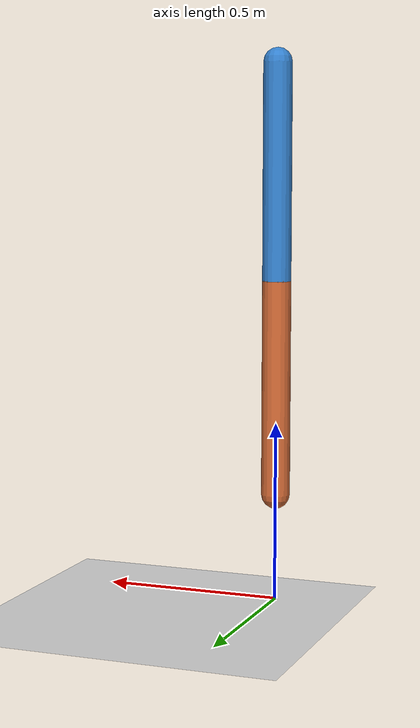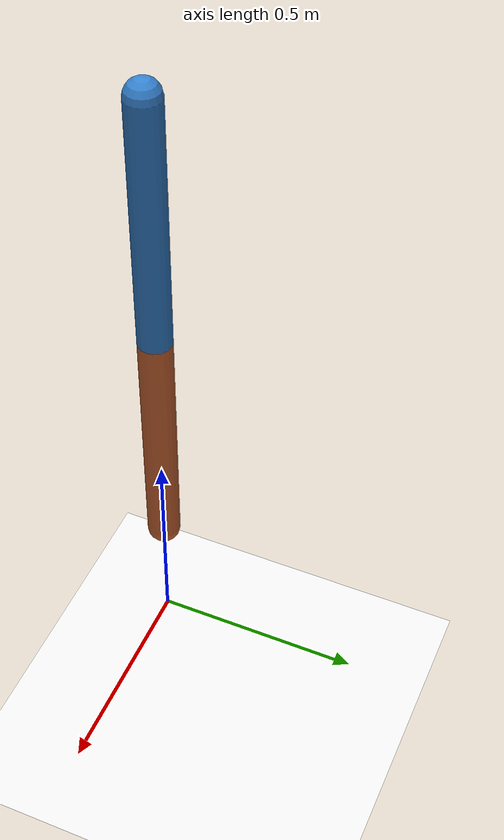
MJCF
<mujoco model="double_pendulum_free_swing">
  <compiler angle="radian" coordinate="local"/>

  <option timestep="0.002" gravity="0 0 -9.81" integrator="RK4"/>

  <visual>
    <headlight diffuse="0.8 0.8 0.8" ambient="0.2 0.2 0.2" specular="0 0 0"/>
  </visual>

  <default>
    <joint limited="false" damping="0.01"/>
    <geom type="capsule" friction="1 0.1 0.1" density="800"/>
  </default>

  <worldbody>
    <light pos="0 0 3"/>
    <geom name="ground" type="plane" size="2 2 0.1" rgba="0.92 0.92 0.92 1"/>
    <camera name="main" pos="2.2 -2.2 1.8" xyaxes="0.7 0.7 0  -0.3 0.3 0.9"/>

    <body name="base" pos="0 0 1.5">
      <site name="pivot" pos="0 0 0" size="0.01" rgba="0 0 0 1"/>

      <body name="link1">
        <joint name="hinge1" type="hinge" axis="0 1 0"/>
        <geom name="rod1" fromto="0 0 0  0 0 -0.6" size="0.04" rgba="0.2 0.5 0.8 1"/>

        <body name="link2" pos="0 0 -0.6">
          <joint name="hinge2" type="hinge" axis="0 1 0"/>
          <geom name="rod2" fromto="0 0 0  0 0 -0.6" size="0.04" rgba="0.8 0.4 0.2 1"/>
          <site name="tip" pos="0 0 -0.6" size="0.01" rgba="0 0 0 1"/>
        </body>
      </body>
    </body>
  </worldbody>
</mujoco>
